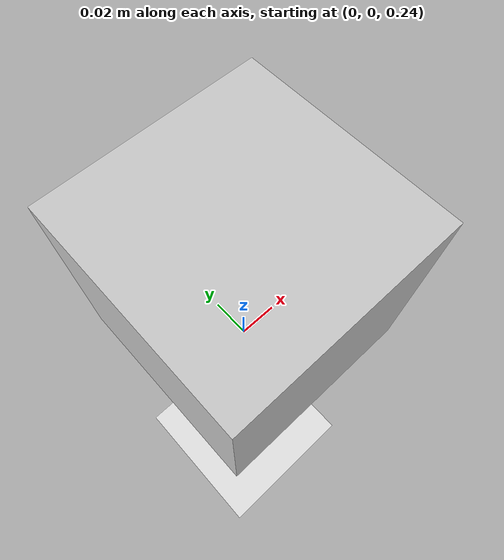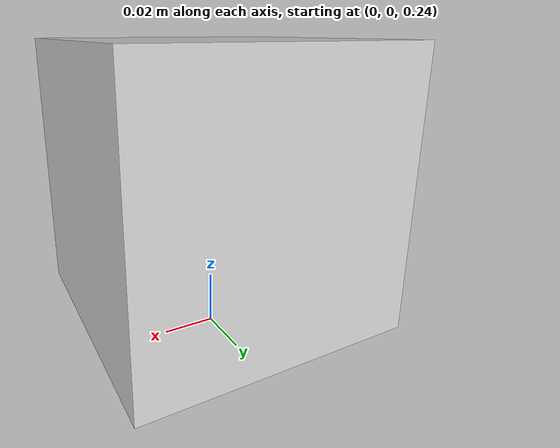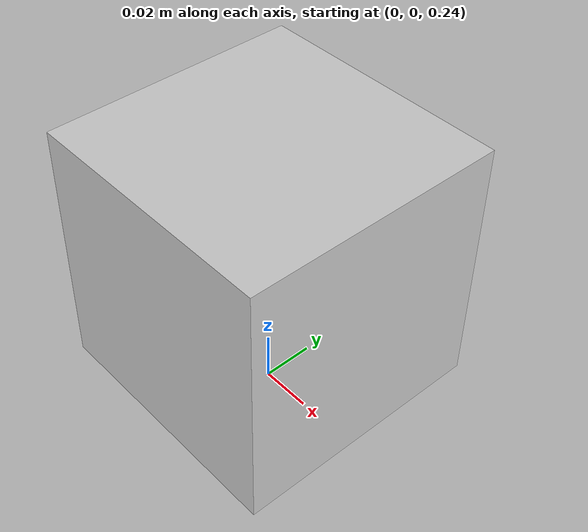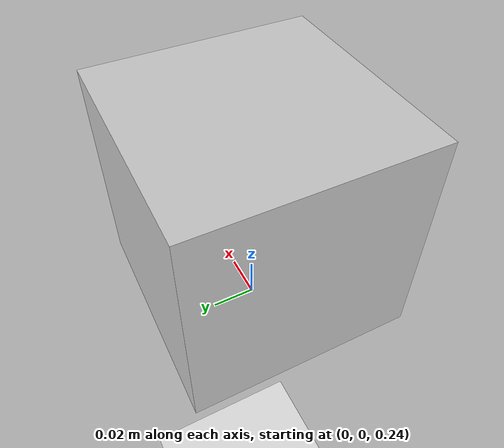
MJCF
<mujoco model="box_on_plane">
  <option timestep="0.002" gravity="0 0 -9.81"/>

  <worldbody>
    <!-- Collision planes are infinite; size sets the drawn extent (1 m x 1 m, 0.05 m grid). -->
    <geom name="floor" type="plane" size="0.5 0.5 0.05" rgba="0.9 0.9 0.9 1"/>

    <body name="box" pos="0 0 0.3">
      <freejoint name="box"/>
      <!-- Half-sizes 0.05 m give a 0.1 m cube; mass 1 kg sets the density to 1000 kg/m^3. -->
      <geom name="box" type="box" size="0.05 0.05 0.05" mass="1" rgba="0.8 0.8 0.8 1"/>
    </body>
  </worldbody>
</mujoco>
